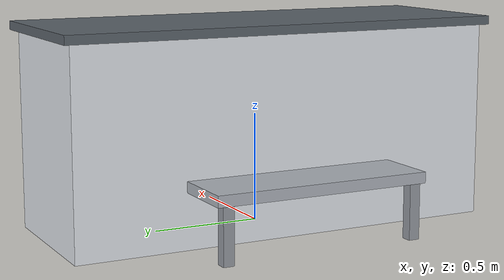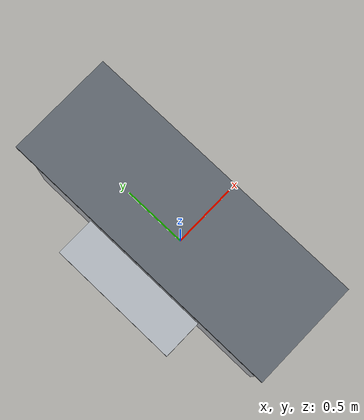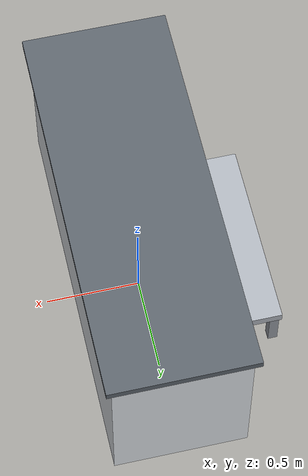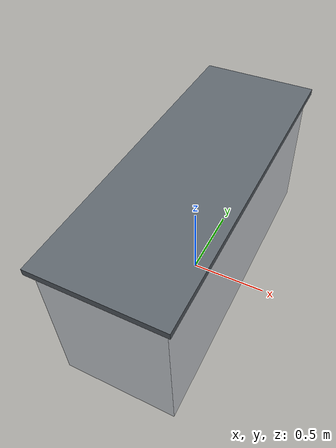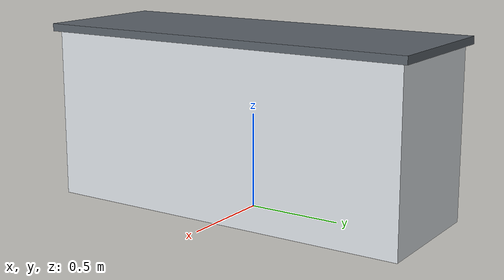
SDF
<?xml version="1.0" ?>
<sdf version="1.9">
  <model name="lab_bench">
    <static>true</static>
    <link name="link">

      <!-- Counter carcass: 0.70 deep, 2.00 wide, 0.90 tall. -->
      <collision name="carcass_collision">
        <pose>0 0 0.45 0 0 0</pose>
        <geometry><box><size>0.70 2.00 0.90</size></box></geometry>
      </collision>
      <visual name="carcass_visual">
        <pose>0 0 0.45 0 0 0</pose>
        <geometry><box><size>0.70 2.00 0.90</size></box></geometry>
        <material>
          <ambient>0.80 0.82 0.84 1</ambient>
          <diffuse>0.88 0.90 0.92 1</diffuse>
          <specular>0.2 0.2 0.2 1</specular>
        </material>
      </visual>

      <!-- Worktop, overhanging the carcass on every side. -->
      <collision name="worktop_collision">
        <pose>0 0 0.92 0 0 0</pose>
        <geometry><box><size>0.76 2.06 0.04</size></box></geometry>
      </collision>
      <visual name="worktop_visual">
        <pose>0 0 0.92 0 0 0</pose>
        <geometry><box><size>0.76 2.06 0.04</size></box></geometry>
        <material>
          <ambient>0.28 0.30 0.33 1</ambient>
          <diffuse>0.36 0.39 0.42 1</diffuse>
          <specular>0.4 0.4 0.4 1</specular>
        </material>
      </visual>

      <!-- Transfer shelf: slab top at z = 0.30, protruding 0.30 m in -x. -->
      <collision name="shelf_collision">
        <pose>-0.50 0 0.275 0 0 0</pose>
        <geometry><box><size>0.30 1.00 0.05</size></box></geometry>
      </collision>
      <visual name="shelf_visual">
        <pose>-0.50 0 0.275 0 0 0</pose>
        <geometry><box><size>0.30 1.00 0.05</size></box></geometry>
        <material>
          <ambient>0.55 0.57 0.60 1</ambient>
          <diffuse>0.68 0.70 0.73 1</diffuse>
          <specular>0.5 0.5 0.5 1</specular>
        </material>
      </visual>

      <!-- Shelf legs, inset from the slab's outer corners. -->
      <collision name="shelf_leg_left_collision">
        <pose>-0.62 0.45 0.1375 0 0 0</pose>
        <geometry><box><size>0.05 0.05 0.275</size></box></geometry>
      </collision>
      <visual name="shelf_leg_left_visual">
        <pose>-0.62 0.45 0.1375 0 0 0</pose>
        <geometry><box><size>0.05 0.05 0.275</size></box></geometry>
        <material>
          <ambient>0.45 0.47 0.50 1</ambient>
          <diffuse>0.58 0.60 0.63 1</diffuse>
        </material>
      </visual>
      <collision name="shelf_leg_right_collision">
        <pose>-0.62 -0.45 0.1375 0 0 0</pose>
        <geometry><box><size>0.05 0.05 0.275</size></box></geometry>
      </collision>
      <visual name="shelf_leg_right_visual">
        <pose>-0.62 -0.45 0.1375 0 0 0</pose>
        <geometry><box><size>0.05 0.05 0.275</size></box></geometry>
        <material>
          <ambient>0.45 0.47 0.50 1</ambient>
          <diffuse>0.58 0.60 0.63 1</diffuse>
        </material>
      </visual>

    </link>
  </model>
</sdf>
